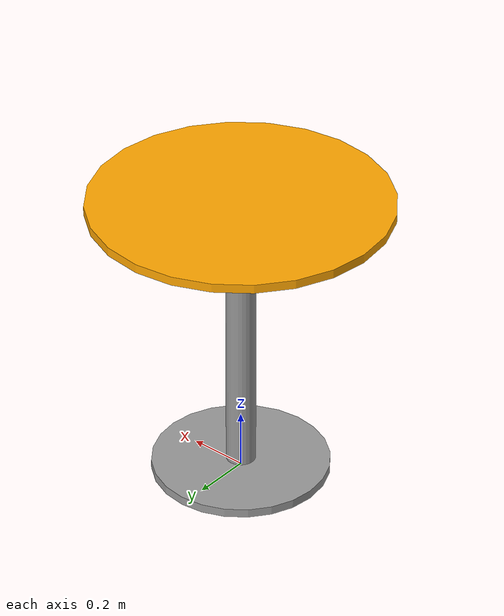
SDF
<?xml version='1.0'?>
<sdf version='1.7'>
  <model name='small_table'>
    <link name='table_base'>
      <inertial>
        <mass>1</mass>
        <inertia>
          <ixx>0.145833</ixx>
          <ixy>0</ixy>
          <ixz>0</ixz>
          <iyy>0.145833</iyy>
          <iyz>0</iyz>
          <izz>0.125</izz>
        </inertia>
        <pose>0 0 0 0 -0 0</pose>
      </inertial>
      <pose>0 0 0.015 0 -0 0</pose>
      <gravity>1</gravity>
      <self_collide>0</self_collide>
      <kinematic>0</kinematic>
      <enable_wind>0</enable_wind>
      <visual name='visual'>
        <pose>0 0 0 0 -0 0</pose>
        <geometry>
          <cylinder>
            <radius>0.3</radius>
            <length>0.03</length>
          </cylinder>
        </geometry>
        <material>
          <lighting>1</lighting>
          <script>
            <uri>file://media/materials/scripts/gazebo.material</uri>
            <name>Gazebo/Grey</name>
          </script>
          <shader type='pixel'>
            <normal_map>__default__</normal_map>
          </shader>
          <ambient>0.3 0.3 0.3 1</ambient>
          <diffuse>0.7 0.7 0.7 1</diffuse>
          <specular>0.01 0.01 0.01 1</specular>
          <emissive>0 0 0 1</emissive>
        </material>
        <transparency>0</transparency>
        <cast_shadows>1</cast_shadows>
      </visual>
      <collision name='collision'>
        <laser_retro>0</laser_retro>
        <max_contacts>10</max_contacts>
        <pose>0 0 0 0 -0 0</pose>
        <geometry>
          <cylinder>
            <radius>0.3</radius>
            <length>0.03</length>
          </cylinder>
        </geometry>
        <surface>
          <friction>
            <ode>
              <mu>1</mu>
              <mu2>1</mu2>
              <fdir1>0 0 0</fdir1>
              <slip1>0</slip1>
              <slip2>0</slip2>
            </ode>
            <torsional>
              <coefficient>1</coefficient>
              <patch_radius>0</patch_radius>
              <surface_radius>0</surface_radius>
              <use_patch_radius>1</use_patch_radius>
              <ode>
                <slip>0</slip>
              </ode>
            </torsional>
          </friction>
          <bounce>
            <restitution_coefficient>0</restitution_coefficient>
            <threshold>1e+06</threshold>
          </bounce>
          <contact>
            <collide_without_contact>0</collide_without_contact>
            <collide_without_contact_bitmask>1</collide_without_contact_bitmask>
            <collide_bitmask>1</collide_bitmask>
            <ode>
              <soft_cfm>0</soft_cfm>
              <soft_erp>0.2</soft_erp>
              <kp>1e+13</kp>
              <kd>1</kd>
              <max_vel>0.01</max_vel>
              <min_depth>0</min_depth>
            </ode>
            <bullet>
              <split_impulse>1</split_impulse>
              <split_impulse_penetration_threshold>-0.01</split_impulse_penetration_threshold>
              <soft_cfm>0</soft_cfm>
              <soft_erp>0.2</soft_erp>
              <kp>1e+13</kp>
              <kd>1</kd>
            </bullet>
          </contact>
        </surface>
      </collision>
    </link>
    <link name='table_top'>
      <inertial>
        <mass>1</mass>
        <inertia>
          <ixx>0.145833</ixx>
          <ixy>0</ixy>
          <ixz>0</ixz>
          <iyy>0.145833</iyy>
          <iyz>0</iyz>
          <izz>0.125</izz>
        </inertia>
        <pose>0 0 0 0 -0 0</pose>
      </inertial>
      <pose>0 0 1.015 0 -0 0</pose>
      <gravity>1</gravity>
      <self_collide>0</self_collide>
      <kinematic>0</kinematic>
      <enable_wind>0</enable_wind>
      <visual name='visual'>
        <pose>0 0 0 0 -0 0</pose>
        <geometry>
          <cylinder>
            <radius>0.5</radius>
            <length>0.03</length>
          </cylinder>
        </geometry>
        <material>
          <ambient>1 0.65 0 1</ambient>
          <diffuse>1 0.65 0 1</diffuse>
          <specular>0 0 0 0</specular>
          <emissive>0 0 0 1</emissive>
        </material>
        <transparency>0</transparency>
        <cast_shadows>1</cast_shadows>
      </visual>
      <collision name='collision'>
        <laser_retro>0</laser_retro>
        <max_contacts>10</max_contacts>
        <pose>0 0 0 0 -0 0</pose>
        <geometry>
          <cylinder>
            <radius>0.5</radius>
            <length>0.03</length>
          </cylinder>
        </geometry>
        <surface>
          <friction>
            <ode>
              <mu>1</mu>
              <mu2>1</mu2>
              <fdir1>0 0 0</fdir1>
              <slip1>0</slip1>
              <slip2>0</slip2>
            </ode>
            <torsional>
              <coefficient>1</coefficient>
              <patch_radius>0</patch_radius>
              <surface_radius>0</surface_radius>
              <use_patch_radius>1</use_patch_radius>
              <ode>
                <slip>0</slip>
              </ode>
            </torsional>
          </friction>
          <bounce>
            <restitution_coefficient>0</restitution_coefficient>
            <threshold>1e+06</threshold>
          </bounce>
          <contact>
            <collide_without_contact>0</collide_without_contact>
            <collide_without_contact_bitmask>1</collide_without_contact_bitmask>
            <collide_bitmask>1</collide_bitmask>
            <ode>
              <soft_cfm>0</soft_cfm>
              <soft_erp>0.2</soft_erp>
              <kp>1e+13</kp>
              <kd>1</kd>
              <max_vel>0.01</max_vel>
              <min_depth>0</min_depth>
            </ode>
            <bullet>
              <split_impulse>1</split_impulse>
              <split_impulse_penetration_threshold>-0.01</split_impulse_penetration_threshold>
              <soft_cfm>0</soft_cfm>
              <soft_erp>0.2</soft_erp>
              <kp>1e+13</kp>
              <kd>1</kd>
            </bullet>
          </contact>
        </surface>
      </collision>
    </link>
    <link name='table_leg'>
      <inertial>
        <mass>1</mass>
        <inertia>
          <ixx>0.145833</ixx>
          <ixy>0</ixy>
          <ixz>0</ixz>
          <iyy>0.145833</iyy>
          <iyz>0</iyz>
          <izz>0.125</izz>
        </inertia>
        <pose>0 0 0 0 -0 0</pose>
      </inertial>
      <pose>0 0 0.505 0 -0 0</pose>
      <gravity>1</gravity>
      <self_collide>0</self_collide>
      <kinematic>0</kinematic>
      <enable_wind>0</enable_wind>
      <visual name='visual'>
        <pose>0 0 0 0 -0 0</pose>
        <geometry>
          <cylinder>
            <radius>0.05</radius>
            <length>1</length>
          </cylinder>
        </geometry>
        <material>
          <lighting>1</lighting>
          <script>
            <uri>file://media/materials/scripts/gazebo.material</uri>
            <name>Gazebo/Grey</name>
          </script>
          <shader type='pixel'>
            <normal_map>__default__</normal_map>
          </shader>
          <ambient>0.3 0.3 0.3 1</ambient>
          <diffuse>0.7 0.7 0.7 1</diffuse>
          <specular>0.01 0.01 0.01 1</specular>
          <emissive>0 0 0 1</emissive>
        </material>
        <transparency>0</transparency>
        <cast_shadows>1</cast_shadows>
      </visual>
      <collision name='collision'>
        <laser_retro>0</laser_retro>
        <max_contacts>10</max_contacts>
        <pose>0 0 0 0 -0 0</pose>
        <geometry>
          <cylinder>
            <radius>0.05</radius>
            <length>1</length>
          </cylinder>
        </geometry>
        <surface>
          <friction>
            <ode>
              <mu>1</mu>
              <mu2>1</mu2>
              <fdir1>0 0 0</fdir1>
              <slip1>0</slip1>
              <slip2>0</slip2>
            </ode>
            <torsional>
              <coefficient>1</coefficient>
              <patch_radius>0</patch_radius>
              <surface_radius>0</surface_radius>
              <use_patch_radius>1</use_patch_radius>
              <ode>
                <slip>0</slip>
              </ode>
            </torsional>
          </friction>
          <bounce>
            <restitution_coefficient>0</restitution_coefficient>
            <threshold>1e+06</threshold>
          </bounce>
          <contact>
            <collide_without_contact>0</collide_without_contact>
            <collide_without_contact_bitmask>1</collide_without_contact_bitmask>
            <collide_bitmask>1</collide_bitmask>
            <ode>
              <soft_cfm>0</soft_cfm>
              <soft_erp>0.2</soft_erp>
              <kp>1e+13</kp>
              <kd>1</kd>
              <max_vel>0.01</max_vel>
              <min_depth>0</min_depth>
            </ode>
            <bullet>
              <split_impulse>1</split_impulse>
              <split_impulse_penetration_threshold>-0.01</split_impulse_penetration_threshold>
              <soft_cfm>0</soft_cfm>
              <soft_erp>0.2</soft_erp>
              <kp>1e+13</kp>
              <kd>1</kd>
            </bullet>
          </contact>
        </surface>
      </collision>
    </link>
    <joint name='table_base_JOINT_1' type='fixed'>
      <parent>table_base</parent>
      <child>table_leg</child>
      <pose>0 0 0 0 -0 0</pose>
      <physics>
        <ode>
          <limit>
            <cfm>0</cfm>
            <erp>0.2</erp>
          </limit>
          <suspension>
            <cfm>0</cfm>
            <erp>0.2</erp>
          </suspension>
        </ode>
      </physics>
    </joint>
    <joint name='table_leg_JOINT_2' type='fixed'>
      <parent>table_leg</parent>
      <child>table_top</child>
      <pose>0 0 0 0 -0 0</pose>
      <physics>
        <ode>
          <limit>
            <cfm>0</cfm>
            <erp>0.2</erp>
          </limit>
          <suspension>
            <cfm>0</cfm>
            <erp>0.2</erp>
          </suspension>
        </ode>
      </physics>
    </joint>
    <static>0</static>
    <allow_auto_disable>1</allow_auto_disable>
  </model>
</sdf>
